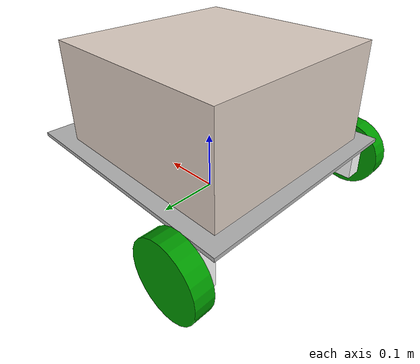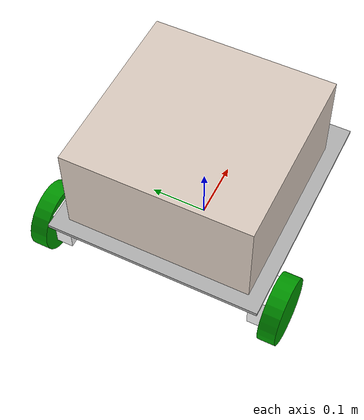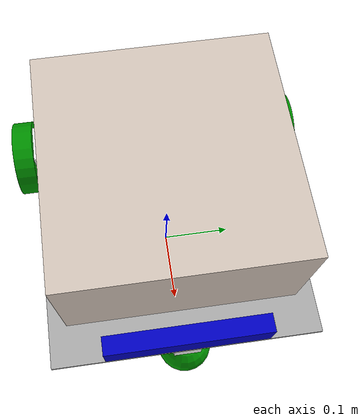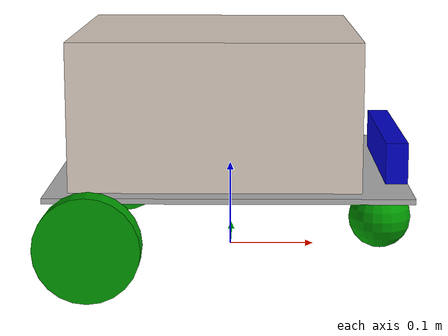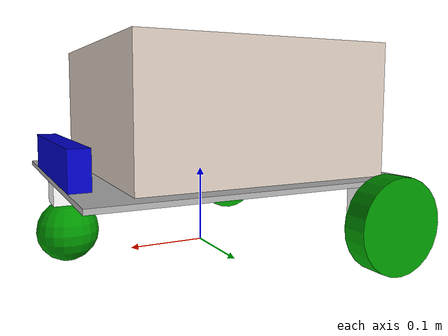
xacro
<?xml version="1.0"?>
<robot xmlns:xacro="http://www.ros.org/wiki/xacro" >

    <!-- Init colour -->
    <material name="black">
      <color rgba="0.0 0.0 0.0 1.0"/>
    </material>

    <material name="dark">
        <color rgba="0.3 0.3 0.3 1.0"/>
    </material>

    <material name="light_black">
        <color rgba="0.4 0.4 0.4 1.0"/>
    </material>

    <material name="brown">
    <color rgba="0.8706 0.8118 0.7647 1.0"/>
    </material>

    <material name="blue">
        <color rgba="0.0 0.0 0.8 1.0"/>
    </material>

    <material name="grey">
        <color rgba="0.7 0.7 0.7 1" />
    </material>

    <material name="green">
        <color rgba="0 0.6 0 1" />
    </material>

    <material name="white">
        <color rgba="1 1 1 1" />
    </material>

    <!-- base_footprint -->
    <link name="base_footprint" />

    <!-- base_link -->
    <joint name="base_joint" type="fixed">
        <parent link="base_footprint" />
        <child link="base_link" />
        <origin xyz="0 0 0.0935" rpy="0 0 0" />
    </joint>

    <link name="base_link">
        <visual>
            <geometry>
                <box size="0.4 0.37 0.006" />
            </geometry>
            <origin xyz="0 0 0.003" rpy="0 0 0" />
            <material name="grey" />
        </visual>

        <collision>
            <origin xyz="0 0 0.003" rpy="0 0 0" />
            <geometry>
                <box size="0.4 0.37 0.006" />
            </geometry>
        </collision>
    </link>

    <!-- upper_connection_link -->
    <joint name="base_connection_link" type="fixed">
        <parent link="base_link" />
        <child link="upper_connection_link" />
        <origin xyz="0.1875 0 0.029" rpy="0 0 0" />
    </joint>

    <link name="upper_connection_link">
        <visual>
            <geometry>
                <box size="0.025 0.224 0.046" />
            </geometry>
            <origin xyz="0 0 0" rpy="0 0 0" />
            <material name="blue"/>
        </visual>

        <collision>
            <geometry>
                <box size="0.025 0.224 0.046" />
            </geometry>
            <origin xyz="0 0 0" rpy="0 0 0" />
        </collision>
    </link>

    <!--sensor_link-->
    <xacro:include filename="sensor.xacro" />

    <!-- upper_link -->
    <joint name="base_upper_joint" type="fixed">
        <parent link="base_link" />
        <child link="upper_link" />
        <origin xyz="-0.015 0 0.085" rpy="0 0 0" />
    </joint>

    <link name="upper_link">
        <visual>
            <geometry>
                <box size="0.32 0.32 0.17" />
            </geometry>
            <origin xyz="0 0 0" rpy="0 0 0" />
            <material name="brown" />
        </visual>

        <collision>
            <origin xyz="0 0 0" rpy="0 0 0" />
            <geometry>
                <box size="0.32 0.32 0.17" />
            </geometry>
        </collision>
    </link>

    <!-- left_connection_link -->
    <joint name="base_left_connection_joint" type="fixed">
        <parent link="base_link" />
        <child link="left_connection_link" />
        <origin xyz="-0.149 0.1756 -0.036" rpy="0 0 0" />
    </joint>

    <link name="left_connection_link">
        <visual>
            <geometry>
                <box size="0.0574 0.0292 0.072" />
            </geometry>
            <origin xyz="0 0 0" rpy="0 0 0" />
            <material name="white" />
        </visual>

        <collision>
            <origin xyz="0 0 0" rpy="0 0 0" />
            <geometry>
                <box size="0.0574 0.0292 0.072" />
            </geometry>
        </collision>
    </link>

    <!-- right_connection_link -->
    <joint name="base_right_connection_joint" type="fixed">
        <parent link="base_link" />
        <child link="right_connection_link" />
        <origin xyz="-0.149 -0.1756 -0.036" rpy="0 0 0" />
    </joint>

    <link name="right_connection_link">
        <visual>
            <geometry>
                <box size="0.0574 0.0292 0.072" />
            </geometry>
            <origin xyz="0 0 0" rpy="0 0 0" />
            <material name="white" />
        </visual>

        <collision>
            <origin xyz="0 0 0" rpy="0 0 0" />
            <geometry>
                <box size="0.0574 0.0292 0.072" />
            </geometry>
        </collision>
    </link>

    <!-- caster_connection_link -->
    <joint name="base_caster_connection_joint" type="fixed">
        <parent link="base_link" />
        <child link="caster_connection_link" />
        <origin xyz="0.181 0 -0.01275" rpy="0 0 0" />
    </joint>

    <link name="caster_connection_link">
        <visual>
            <geometry>
                <box size="0.038 0.0375 0.0255" />
            </geometry>
            <origin xyz="0 0 0" rpy="0 0 0" />
            <material name="white" />
        </visual>

        <collision>
            <origin xyz="0 0 0" rpy="0 0 0" />
            <geometry>
                <box size="0.038 0.0375 0.0255" />
            </geometry>
        </collision>
    </link>

    <!-- left_wheel -->
    <joint name="left_connection_wheel_joint" type="continuous">
        <parent link="left_connection_link" />
        <child link="left_wheel" />
        <origin xyz="0 0.0296 -0.007" rpy="0 0 0" />
        <axis xyz="0 1 0" />
    </joint>

    <link name="left_wheel">
        <visual>
            <geometry>
                <cylinder radius="0.0575" length="0.03" />
            </geometry>
            <origin xyz="0 0 0" rpy="1.57 0 0" />
            <material name="green" />
        </visual>

        <collision>
            <origin xyz="0 0 0" rpy="1.57 0 0" />
            <geometry>
                <cylinder radius="0.0575" length="0.03" />
            </geometry>
        </collision>
    </link>

    <!-- right_wheel -->
    <joint name="right_connection_wheel_joint" type="continuous">
        <parent link="right_connection_link" />
        <child link="right_wheel" />
        <origin xyz="0 -0.0296 -0.007" rpy="0 0 0" />
        <axis xyz="0 1 0" />
    </joint>

    <link name="right_wheel">
        <visual>
            <geometry>
                <cylinder radius="0.0575" length="0.03" />
            </geometry>
            <origin xyz="0 0 0" rpy="1.57 0 0" />
            <material name="green" />
        </visual>

        <collision>
            <origin xyz="0 0 0" rpy="1.57 0 0" />
            <geometry>
                <cylinder radius="0.0575" length="0.03" />
            </geometry>
        </collision>
    </link>

    <!-- caster_wheel -->
    <joint name="caster_connection_wheel_joint" type="fixed">
        <parent link="caster_connection_link" />
        <child link="caster_wheel" />
        <origin xyz="0 0 -0.04675" rpy="0 0 0" />
    </joint>

    <link name="caster_wheel">
        <visual>
            <geometry>
                <sphere radius="0.0375" />
            </geometry>
            <origin xyz="0 0 0" rpy="0 0 0" />
            <material name="green" />
        </visual>

        <collision>
            <origin xyz="0 0 0" rpy="0 0 0" />
            <geometry>
                <sphere radius="0.0375" />
            </geometry>
        </collision>
    </link>

</robot>

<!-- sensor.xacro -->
<robot xmlns:xacro="http://www.ros.org/wiki/xacro">

    <!--lidar_link-->
    <joint name="upper_connection_lidar_joint" type="fixed">
        <parent link="upper_connection_link" />
        <child link="lidar_link" />
        <origin xyz="0 0 0" rpy="0 0 0" />
    </joint>

    <link name="lidar_link">
        <visual>
            <geometry>
                <box size="0.0245 0.0374 0.0374" />
            </geometry>
            <origin xyz="0 0 0" rpy="0 0 0" />
            <material name="light_black" />
        </visual>

        <collision>
            <geometry>
                <box size="0.0245 0.0374 0.0374" />
            </geometry>
            <origin xyz="0 0 0" rpy="0 0 0" />
        </collision>
    </link>
</robot>
